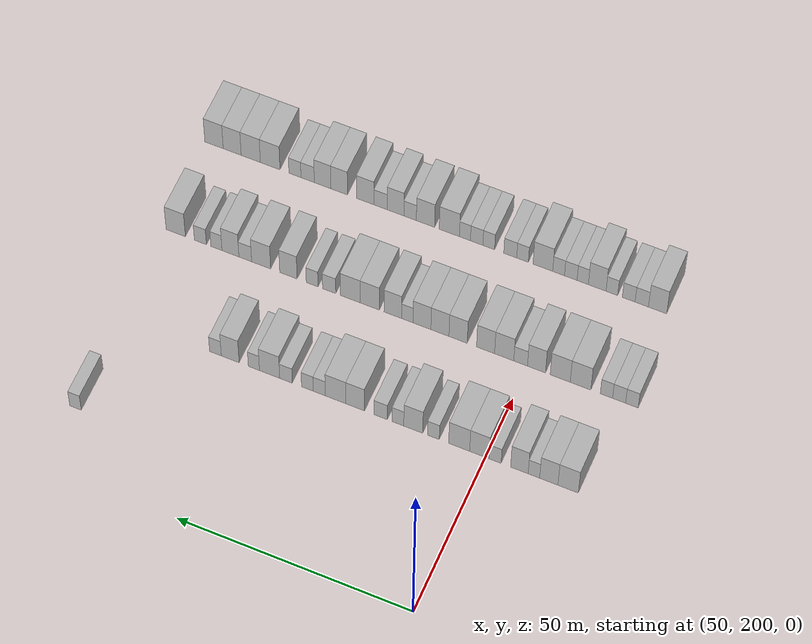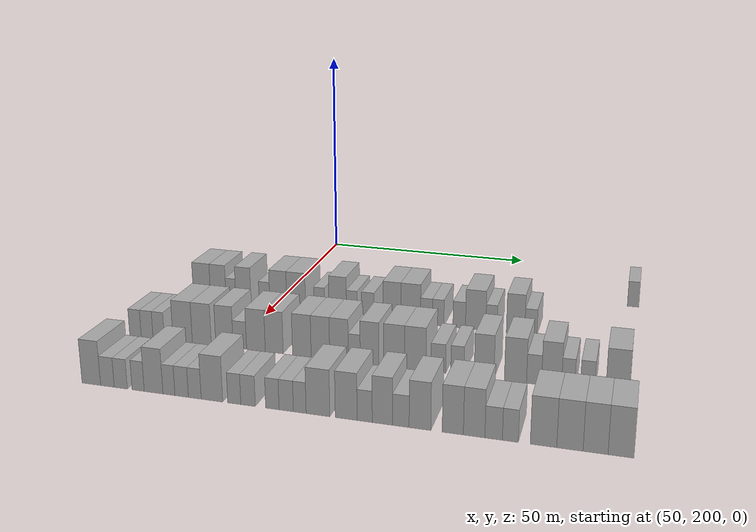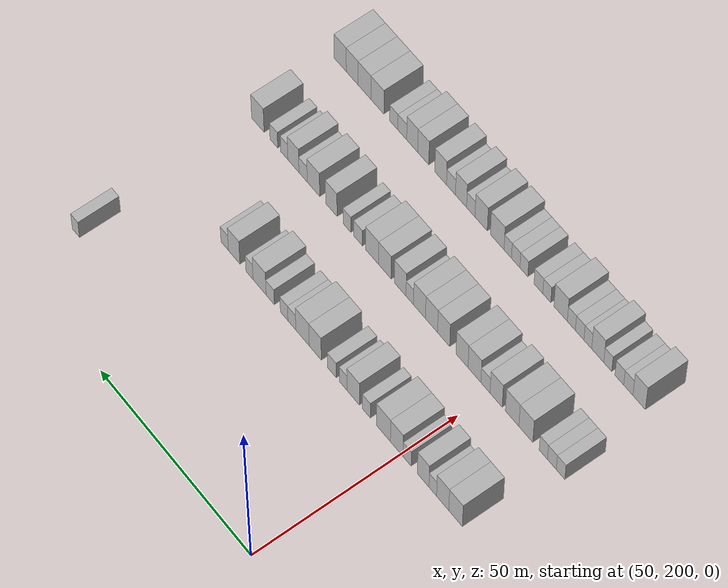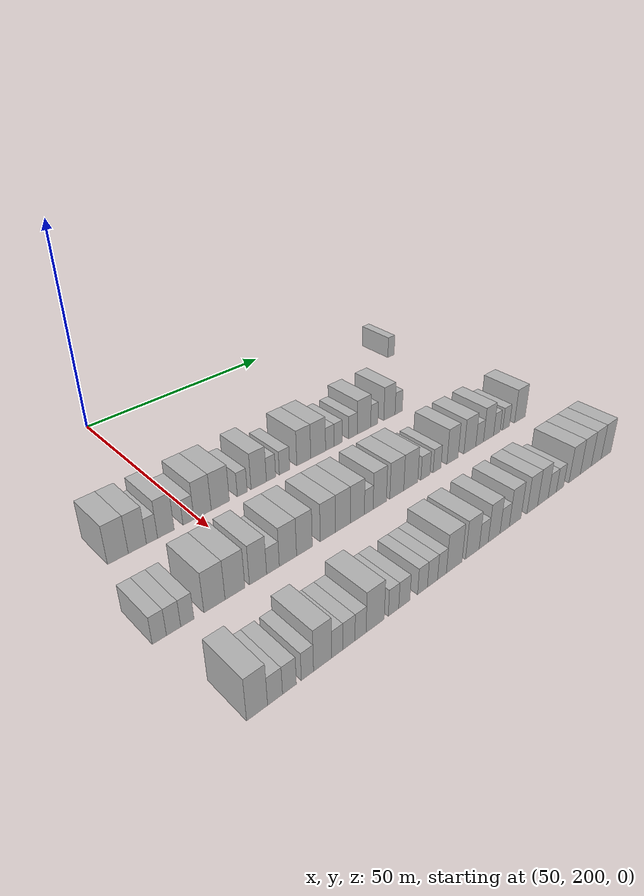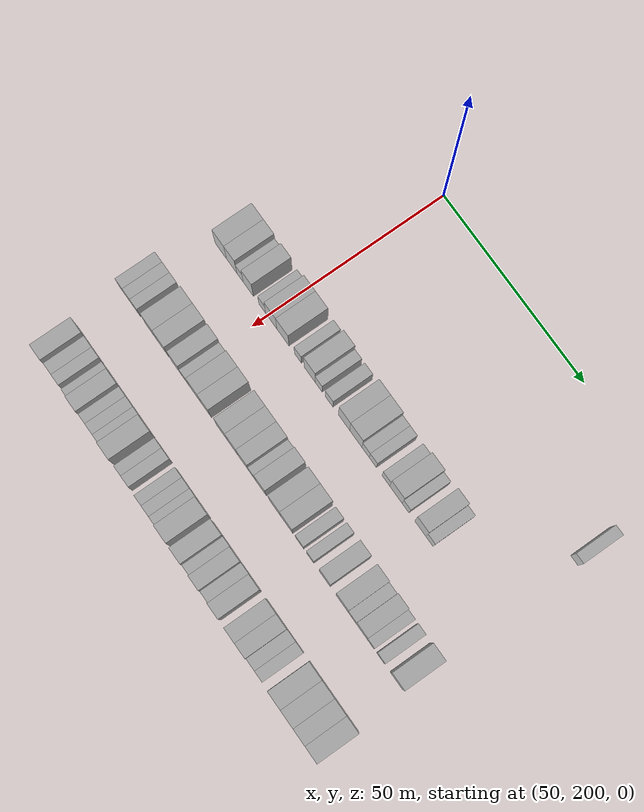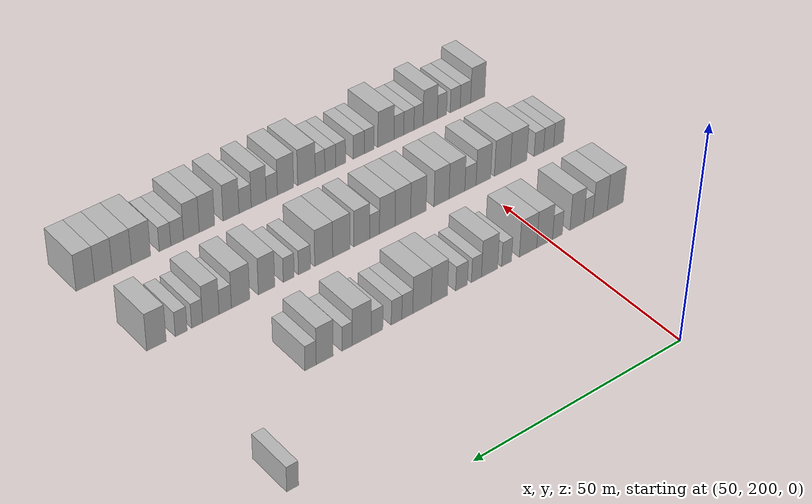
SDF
<sdf version="1.6">
 <world name="default">
  <model name="building_548">
   <static>1</static>
   <pose>69.0000 278.5231 0 0.000000 0.000000 0.000000</pose>
   <link name="link">
    <pose>0 0 3.00 0 0 0</pose>
    <collision name="collision"><geometry><box><size>10.0000 2.5204 6.0000</size></box></geometry></collision>
    <visual name="visual">
     <cast_shadows>0</cast_shadows>
     <geometry><box><size>10.0000 2.5204 6.0000</size></box></geometry>
     <material>
      <script>
       <uri>model://HANNAS_wall/materials/scripts</uri>
       <uri>model://HANNAS_wall/materials/textures</uri>
       <name>vrc/HANNAS_wall</name>
      </script>
     </material>
    </visual>
   </link>
  </model>
  <model name="building_701">
   <static>1</static>
   <pose>91.0000 182.6014 0 0.000000 0.000000 0.000000</pose>
   <link name="link">
    <pose>0 0 4.50 0 0 0</pose>
    <collision name="collision"><geometry><box><size>10.0000 4.3018 9.0000</size></box></geometry></collision>
    <visual name="visual">
     <cast_shadows>0</cast_shadows>
     <geometry><box><size>10.0000 4.3018 9.0000</size></box></geometry>
     <material>
      <script>
       <uri>model://HANNAS_wall/materials/scripts</uri>
       <uri>model://HANNAS_wall/materials/textures</uri>
       <name>vrc/HANNAS_wall</name>
      </script>
     </material>
    </visual>
   </link>
  </model>
  <model name="building_702">
   <static>1</static>
   <pose>91.0000 186.6774 0 0.000000 0.000000 0.000000</pose>
   <link name="link">
    <pose>0 0 4.50 0 0 0</pose>
    <collision name="collision"><geometry><box><size>10.0000 3.8501 9.0000</size></box></geometry></collision>
    <visual name="visual">
     <cast_shadows>0</cast_shadows>
     <geometry><box><size>10.0000 3.8501 9.0000</size></box></geometry>
     <material>
      <script>
       <uri>model://HANNAS_wall/materials/scripts</uri>
       <uri>model://HANNAS_wall/materials/textures</uri>
       <name>vrc/HANNAS_wall</name>
      </script>
     </material>
    </visual>
   </link>
  </model>
  <model name="building_703">
   <static>1</static>
   <pose>91.0000 189.8165 0 0.000000 0.000000 0.000000</pose>
   <link name="link">
    <pose>0 0 3.00 0 0 0</pose>
    <collision name="collision"><geometry><box><size>10.0000 2.4281 6.0000</size></box></geometry></collision>
    <visual name="visual">
     <cast_shadows>0</cast_shadows>
     <geometry><box><size>10.0000 2.4281 6.0000</size></box></geometry>
     <material>
      <script>
       <uri>model://HANNAS_wall/materials/scripts</uri>
       <uri>model://HANNAS_wall/materials/textures</uri>
       <name>vrc/HANNAS_wall</name>
      </script>
     </material>
    </visual>
   </link>
  </model>
  <model name="building_704">
   <static>1</static>
   <pose>91.0000 192.8850 0 0.000000 0.000000 0.000000</pose>
   <link name="link">
    <pose>0 0 4.50 0 0 0</pose>
    <collision name="collision"><geometry><box><size>10.0000 3.7090 9.0000</size></box></geometry></collision>
    <visual name="visual">
     <cast_shadows>0</cast_shadows>
     <geometry><box><size>10.0000 3.7090 9.0000</size></box></geometry>
     <material>
      <script>
       <uri>model://HANNAS_wall/materials/scripts</uri>
       <uri>model://HANNAS_wall/materials/textures</uri>
       <name>vrc/HANNAS_wall</name>
      </script>
     </material>
    </visual>
   </link>
  </model>
  <model name="building_705">
   <static>1</static>
   <pose>91.0000 198.0206 0 0.000000 0.000000 0.000000</pose>
   <link name="link">
    <pose>0 0 3.00 0 0 0</pose>
    <collision name="collision"><geometry><box><size>10.0000 2.5623 6.0000</size></box></geometry></collision>
    <visual name="visual">
     <cast_shadows>0</cast_shadows>
     <geometry><box><size>10.0000 2.5623 6.0000</size></box></geometry>
     <material>
      <script>
       <uri>model://HANNAS_wall/materials/scripts</uri>
       <uri>model://HANNAS_wall/materials/textures</uri>
       <name>vrc/HANNAS_wall</name>
      </script>
     </material>
    </visual>
   </link>
  </model>
  <model name="building_706">
   <static>1</static>
   <pose>91.0000 201.3563 0 0.000000 0.000000 0.000000</pose>
   <link name="link">
    <pose>0 0 4.50 0 0 0</pose>
    <collision name="collision"><geometry><box><size>10.0000 4.1090 9.0000</size></box></geometry></collision>
    <visual name="visual">
     <cast_shadows>0</cast_shadows>
     <geometry><box><size>10.0000 4.1090 9.0000</size></box></geometry>
     <material>
      <script>
       <uri>model://HANNAS_wall/materials/scripts</uri>
       <uri>model://HANNAS_wall/materials/textures</uri>
       <name>vrc/HANNAS_wall</name>
      </script>
     </material>
    </visual>
   </link>
  </model>
  <model name="building_707">
   <static>1</static>
   <pose>91.0000 205.6510 0 0.000000 0.000000 0.000000</pose>
   <link name="link">
    <pose>0 0 4.50 0 0 0</pose>
    <collision name="collision"><geometry><box><size>10.0000 4.4804 9.0000</size></box></geometry></collision>
    <visual name="visual">
     <cast_shadows>0</cast_shadows>
     <geometry><box><size>10.0000 4.4804 9.0000</size></box></geometry>
     <material>
      <script>
       <uri>model://HANNAS_wall/materials/scripts</uri>
       <uri>model://HANNAS_wall/materials/textures</uri>
       <name>vrc/HANNAS_wall</name>
      </script>
     </material>
    </visual>
   </link>
  </model>
  <model name="building_708">
   <static>1</static>
   <pose>91.0000 211.1552 0 0.000000 0.000000 0.000000</pose>
   <link name="link">
    <pose>0 0 3.00 0 0 0</pose>
    <collision name="collision"><geometry><box><size>10.0000 2.5281 6.0000</size></box></geometry></collision>
    <visual name="visual">
     <cast_shadows>0</cast_shadows>
     <geometry><box><size>10.0000 2.5281 6.0000</size></box></geometry>
     <material>
      <script>
       <uri>model://HANNAS_wall/materials/scripts</uri>
       <uri>model://HANNAS_wall/materials/textures</uri>
       <name>vrc/HANNAS_wall</name>
      </script>
     </material>
    </visual>
   </link>
  </model>
  <model name="building_709">
   <static>1</static>
   <pose>91.0000 215.4529 0 0.000000 0.000000 0.000000</pose>
   <link name="link">
    <pose>0 0 4.50 0 0 0</pose>
    <collision name="collision"><geometry><box><size>10.0000 4.0671 9.0000</size></box></geometry></collision>
    <visual name="visual">
     <cast_shadows>0</cast_shadows>
     <geometry><box><size>10.0000 4.0671 9.0000</size></box></geometry>
     <material>
      <script>
       <uri>model://HANNAS_wall/materials/scripts</uri>
       <uri>model://HANNAS_wall/materials/textures</uri>
       <name>vrc/HANNAS_wall</name>
      </script>
     </material>
    </visual>
   </link>
  </model>
  <model name="building_710">
   <static>1</static>
   <pose>91.0000 218.7368 0 0.000000 0.000000 0.000000</pose>
   <link name="link">
    <pose>0 0 3.00 0 0 0</pose>
    <collision name="collision"><geometry><box><size>10.0000 2.5007 6.0000</size></box></geometry></collision>
    <visual name="visual">
     <cast_shadows>0</cast_shadows>
     <geometry><box><size>10.0000 2.5007 6.0000</size></box></geometry>
     <material>
      <script>
       <uri>model://HANNAS_wall/materials/scripts</uri>
       <uri>model://HANNAS_wall/materials/textures</uri>
       <name>vrc/HANNAS_wall</name>
      </script>
     </material>
    </visual>
   </link>
  </model>
  <model name="building_711">
   <static>1</static>
   <pose>91.0000 222.4408 0 0.000000 0.000000 0.000000</pose>
   <link name="link">
    <pose>0 0 3.00 0 0 0</pose>
    <collision name="collision"><geometry><box><size>10.0000 2.9073 6.0000</size></box></geometry></collision>
    <visual name="visual">
     <cast_shadows>0</cast_shadows>
     <geometry><box><size>10.0000 2.9073 6.0000</size></box></geometry>
     <material>
      <script>
       <uri>model://HANNAS_wall/materials/scripts</uri>
       <uri>model://HANNAS_wall/materials/textures</uri>
       <name>vrc/HANNAS_wall</name>
      </script>
     </material>
    </visual>
   </link>
  </model>
  <model name="building_712">
   <static>1</static>
   <pose>91.0000 227.9040 0 0.000000 0.000000 0.000000</pose>
   <link name="link">
    <pose>0 0 4.50 0 0 0</pose>
    <collision name="collision"><geometry><box><size>10.0000 4.0192 9.0000</size></box></geometry></collision>
    <visual name="visual">
     <cast_shadows>0</cast_shadows>
     <geometry><box><size>10.0000 4.0192 9.0000</size></box></geometry>
     <material>
      <script>
       <uri>model://HANNAS_wall/materials/scripts</uri>
       <uri>model://HANNAS_wall/materials/textures</uri>
       <name>vrc/HANNAS_wall</name>
      </script>
     </material>
    </visual>
   </link>
  </model>
  <model name="building_713">
   <static>1</static>
   <pose>91.0000 232.1258 0 0.000000 0.000000 0.000000</pose>
   <link name="link">
    <pose>0 0 4.50 0 0 0</pose>
    <collision name="collision"><geometry><box><size>10.0000 4.4245 9.0000</size></box></geometry></collision>
    <visual name="visual">
     <cast_shadows>0</cast_shadows>
     <geometry><box><size>10.0000 4.4245 9.0000</size></box></geometry>
     <material>
      <script>
       <uri>model://HANNAS_wall/materials/scripts</uri>
       <uri>model://HANNAS_wall/materials/textures</uri>
       <name>vrc/HANNAS_wall</name>
      </script>
     </material>
    </visual>
   </link>
  </model>
  <model name="building_714">
   <static>1</static>
   <pose>91.0000 235.6514 0 0.000000 0.000000 0.000000</pose>
   <link name="link">
    <pose>0 0 3.00 0 0 0</pose>
    <collision name="collision"><geometry><box><size>10.0000 2.6267 6.0000</size></box></geometry></collision>
    <visual name="visual">
     <cast_shadows>0</cast_shadows>
     <geometry><box><size>10.0000 2.6267 6.0000</size></box></geometry>
     <material>
      <script>
       <uri>model://HANNAS_wall/materials/scripts</uri>
       <uri>model://HANNAS_wall/materials/textures</uri>
       <name>vrc/HANNAS_wall</name>
      </script>
     </material>
    </visual>
   </link>
  </model>
  <model name="building_715">
   <static>1</static>
   <pose>91.0000 238.2298 0 0.000000 0.000000 0.000000</pose>
   <link name="link">
    <pose>0 0 3.00 0 0 0</pose>
    <collision name="collision"><geometry><box><size>10.0000 2.5301 6.0000</size></box></geometry></collision>
    <visual name="visual">
     <cast_shadows>0</cast_shadows>
     <geometry><box><size>10.0000 2.5301 6.0000</size></box></geometry>
     <material>
      <script>
       <uri>model://HANNAS_wall/materials/scripts</uri>
       <uri>model://HANNAS_wall/materials/textures</uri>
       <name>vrc/HANNAS_wall</name>
      </script>
     </material>
    </visual>
   </link>
  </model>
  <model name="building_716">
   <static>1</static>
   <pose>91.0000 242.8654 0 0.000000 0.000000 0.000000</pose>
   <link name="link">
    <pose>0 0 3.00 0 0 0</pose>
    <collision name="collision"><geometry><box><size>10.0000 2.7411 6.0000</size></box></geometry></collision>
    <visual name="visual">
     <cast_shadows>0</cast_shadows>
     <geometry><box><size>10.0000 2.7411 6.0000</size></box></geometry>
     <material>
      <script>
       <uri>model://HANNAS_wall/materials/scripts</uri>
       <uri>model://HANNAS_wall/materials/textures</uri>
       <name>vrc/HANNAS_wall</name>
      </script>
     </material>
    </visual>
   </link>
  </model>
  <model name="building_717">
   <static>1</static>
   <pose>91.0000 246.4365 0 0.000000 0.000000 0.000000</pose>
   <link name="link">
    <pose>0 0 4.50 0 0 0</pose>
    <collision name="collision"><geometry><box><size>10.0000 4.4010 9.0000</size></box></geometry></collision>
    <visual name="visual">
     <cast_shadows>0</cast_shadows>
     <geometry><box><size>10.0000 4.4010 9.0000</size></box></geometry>
     <material>
      <script>
       <uri>model://HANNAS_wall/materials/scripts</uri>
       <uri>model://HANNAS_wall/materials/textures</uri>
       <name>vrc/HANNAS_wall</name>
      </script>
     </material>
    </visual>
   </link>
  </model>
  <model name="building_718">
   <static>1</static>
   <pose>91.0000 249.8440 0 0.000000 0.000000 0.000000</pose>
   <link name="link">
    <pose>0 0 3.00 0 0 0</pose>
    <collision name="collision"><geometry><box><size>10.0000 2.4140 6.0000</size></box></geometry></collision>
    <visual name="visual">
     <cast_shadows>0</cast_shadows>
     <geometry><box><size>10.0000 2.4140 6.0000</size></box></geometry>
     <material>
      <script>
       <uri>model://HANNAS_wall/materials/scripts</uri>
       <uri>model://HANNAS_wall/materials/textures</uri>
       <name>vrc/HANNAS_wall</name>
      </script>
     </material>
    </visual>
   </link>
  </model>
  <model name="building_719">
   <static>1</static>
   <pose>91.0000 254.9987 0 0.000000 0.000000 0.000000</pose>
   <link name="link">
    <pose>0 0 4.50 0 0 0</pose>
    <collision name="collision"><geometry><box><size>10.0000 3.8954 9.0000</size></box></geometry></collision>
    <visual name="visual">
     <cast_shadows>0</cast_shadows>
     <geometry><box><size>10.0000 3.8954 9.0000</size></box></geometry>
     <material>
      <script>
       <uri>model://HANNAS_wall/materials/scripts</uri>
       <uri>model://HANNAS_wall/materials/textures</uri>
       <name>vrc/HANNAS_wall</name>
      </script>
     </material>
    </visual>
   </link>
  </model>
  <model name="building_720">
   <static>1</static>
   <pose>91.0000 258.2241 0 0.000000 0.000000 0.000000</pose>
   <link name="link">
    <pose>0 0 3.00 0 0 0</pose>
    <collision name="collision"><geometry><box><size>10.0000 2.5553 6.0000</size></box></geometry></collision>
    <visual name="visual">
     <cast_shadows>0</cast_shadows>
     <geometry><box><size>10.0000 2.5553 6.0000</size></box></geometry>
     <material>
      <script>
       <uri>model://HANNAS_wall/materials/scripts</uri>
       <uri>model://HANNAS_wall/materials/textures</uri>
       <name>vrc/HANNAS_wall</name>
      </script>
     </material>
    </visual>
   </link>
  </model>
  <model name="building_881">
   <static>1</static>
   <pose>113.0000 177.9006 0 0.000000 0.000000 0.000000</pose>
   <link name="link">
    <pose>0 0 3.00 0 0 0</pose>
    <collision name="collision"><geometry><box><size>10.0000 2.6804 6.0000</size></box></geometry></collision>
    <visual name="visual">
     <cast_shadows>0</cast_shadows>
     <geometry><box><size>10.0000 2.6804 6.0000</size></box></geometry>
     <material>
      <script>
       <uri>model://HANNAS_wall/materials/scripts</uri>
       <uri>model://HANNAS_wall/materials/textures</uri>
       <name>vrc/HANNAS_wall</name>
      </script>
     </material>
    </visual>
   </link>
  </model>
  <model name="building_882">
   <static>1</static>
   <pose>113.0000 180.6223 0 0.000000 0.000000 0.000000</pose>
   <link name="link">
    <pose>0 0 3.00 0 0 0</pose>
    <collision name="collision"><geometry><box><size>10.0000 2.7631 6.0000</size></box></geometry></collision>
    <visual name="visual">
     <cast_shadows>0</cast_shadows>
     <geometry><box><size>10.0000 2.7631 6.0000</size></box></geometry>
     <material>
      <script>
       <uri>model://HANNAS_wall/materials/scripts</uri>
       <uri>model://HANNAS_wall/materials/textures</uri>
       <name>vrc/HANNAS_wall</name>
      </script>
     </material>
    </visual>
   </link>
  </model>
  <model name="building_883">
   <static>1</static>
   <pose>113.0000 183.3119 0 0.000000 0.000000 0.000000</pose>
   <link name="link">
    <pose>0 0 3.00 0 0 0</pose>
    <collision name="collision"><geometry><box><size>10.0000 2.6160 6.0000</size></box></geometry></collision>
    <visual name="visual">
     <cast_shadows>0</cast_shadows>
     <geometry><box><size>10.0000 2.6160 6.0000</size></box></geometry>
     <material>
      <script>
       <uri>model://HANNAS_wall/materials/scripts</uri>
       <uri>model://HANNAS_wall/materials/textures</uri>
       <name>vrc/HANNAS_wall</name>
      </script>
     </material>
    </visual>
   </link>
  </model>
  <model name="building_884">
   <static>1</static>
   <pose>113.0000 188.8213 0 0.000000 0.000000 0.000000</pose>
   <link name="link">
    <pose>0 0 4.50 0 0 0</pose>
    <collision name="collision"><geometry><box><size>10.0000 4.4028 9.0000</size></box></geometry></collision>
    <visual name="visual">
     <cast_shadows>0</cast_shadows>
     <geometry><box><size>10.0000 4.4028 9.0000</size></box></geometry>
     <material>
      <script>
       <uri>model://HANNAS_wall/materials/scripts</uri>
       <uri>model://HANNAS_wall/materials/textures</uri>
       <name>vrc/HANNAS_wall</name>
      </script>
     </material>
    </visual>
   </link>
  </model>
  <model name="building_885">
   <static>1</static>
   <pose>113.0000 193.1659 0 0.000000 0.000000 0.000000</pose>
   <link name="link">
    <pose>0 0 4.50 0 0 0</pose>
    <collision name="collision"><geometry><box><size>10.0000 4.2864 9.0000</size></box></geometry></collision>
    <visual name="visual">
     <cast_shadows>0</cast_shadows>
     <geometry><box><size>10.0000 4.2864 9.0000</size></box></geometry>
     <material>
      <script>
       <uri>model://HANNAS_wall/materials/scripts</uri>
       <uri>model://HANNAS_wall/materials/textures</uri>
       <name>vrc/HANNAS_wall</name>
      </script>
     </material>
    </visual>
   </link>
  </model>
  <model name="building_886">
   <static>1</static>
   <pose>113.0000 198.2454 0 0.000000 0.000000 0.000000</pose>
   <link name="link">
    <pose>0 0 4.50 0 0 0</pose>
    <collision name="collision"><geometry><box><size>10.0000 3.8727 9.0000</size></box></geometry></collision>
    <visual name="visual">
     <cast_shadows>0</cast_shadows>
     <geometry><box><size>10.0000 3.8727 9.0000</size></box></geometry>
     <material>
      <script>
       <uri>model://HANNAS_wall/materials/scripts</uri>
       <uri>model://HANNAS_wall/materials/textures</uri>
       <name>vrc/HANNAS_wall</name>
      </script>
     </material>
    </visual>
   </link>
  </model>
  <model name="building_887">
   <static>1</static>
   <pose>113.0000 201.6525 0 0.000000 0.000000 0.000000</pose>
   <link name="link">
    <pose>0 0 3.00 0 0 0</pose>
    <collision name="collision"><geometry><box><size>10.0000 2.9414 6.0000</size></box></geometry></collision>
    <visual name="visual">
     <cast_shadows>0</cast_shadows>
     <geometry><box><size>10.0000 2.9414 6.0000</size></box></geometry>
     <material>
      <script>
       <uri>model://HANNAS_wall/materials/scripts</uri>
       <uri>model://HANNAS_wall/materials/textures</uri>
       <name>vrc/HANNAS_wall</name>
      </script>
     </material>
    </visual>
   </link>
  </model>
  <model name="building_888">
   <static>1</static>
   <pose>113.0000 205.1812 0 0.000000 0.000000 0.000000</pose>
   <link name="link">
    <pose>0 0 4.50 0 0 0</pose>
    <collision name="collision"><geometry><box><size>10.0000 4.1160 9.0000</size></box></geometry></collision>
    <visual name="visual">
     <cast_shadows>0</cast_shadows>
     <geometry><box><size>10.0000 4.1160 9.0000</size></box></geometry>
     <material>
      <script>
       <uri>model://HANNAS_wall/materials/scripts</uri>
       <uri>model://HANNAS_wall/materials/textures</uri>
       <name>vrc/HANNAS_wall</name>
      </script>
     </material>
    </visual>
   </link>
  </model>
  <model name="building_889">
   <static>1</static>
   <pose>113.0000 209.1878 0 0.000000 0.000000 0.000000</pose>
   <link name="link">
    <pose>0 0 4.50 0 0 0</pose>
    <collision name="collision"><geometry><box><size>10.0000 3.8972 9.0000</size></box></geometry></collision>
    <visual name="visual">
     <cast_shadows>0</cast_shadows>
     <geometry><box><size>10.0000 3.8972 9.0000</size></box></geometry>
     <material>
      <script>
       <uri>model://HANNAS_wall/materials/scripts</uri>
       <uri>model://HANNAS_wall/materials/textures</uri>
       <name>vrc/HANNAS_wall</name>
      </script>
     </material>
    </visual>
   </link>
  </model>
  <model name="building_890">
   <static>1</static>
   <pose>113.0000 215.1152 0 0.000000 0.000000 0.000000</pose>
   <link name="link">
    <pose>0 0 4.50 0 0 0</pose>
    <collision name="collision"><geometry><box><size>10.0000 3.9574 9.0000</size></box></geometry></collision>
    <visual name="visual">
     <cast_shadows>0</cast_shadows>
     <geometry><box><size>10.0000 3.9574 9.0000</size></box></geometry>
     <material>
      <script>
       <uri>model://HANNAS_wall/materials/scripts</uri>
       <uri>model://HANNAS_wall/materials/textures</uri>
       <name>vrc/HANNAS_wall</name>
      </script>
     </material>
    </visual>
   </link>
  </model>
  <model name="building_891">
   <static>1</static>
   <pose>113.0000 219.0532 0 0.000000 0.000000 0.000000</pose>
   <link name="link">
    <pose>0 0 4.50 0 0 0</pose>
    <collision name="collision"><geometry><box><size>10.0000 3.9187 9.0000</size></box></geometry></collision>
    <visual name="visual">
     <cast_shadows>0</cast_shadows>
     <geometry><box><size>10.0000 3.9187 9.0000</size></box></geometry>
     <material>
      <script>
       <uri>model://HANNAS_wall/materials/scripts</uri>
       <uri>model://HANNAS_wall/materials/textures</uri>
       <name>vrc/HANNAS_wall</name>
      </script>
     </material>
    </visual>
   </link>
  </model>
  <model name="building_892">
   <static>1</static>
   <pose>113.0000 222.9624 0 0.000000 0.000000 0.000000</pose>
   <link name="link">
    <pose>0 0 4.50 0 0 0</pose>
    <collision name="collision"><geometry><box><size>10.0000 3.8996 9.0000</size></box></geometry></collision>
    <visual name="visual">
     <cast_shadows>0</cast_shadows>
     <geometry><box><size>10.0000 3.8996 9.0000</size></box></geometry>
     <material>
      <script>
       <uri>model://HANNAS_wall/materials/scripts</uri>
       <uri>model://HANNAS_wall/materials/textures</uri>
       <name>vrc/HANNAS_wall</name>
      </script>
     </material>
    </visual>
   </link>
  </model>
  <model name="building_893">
   <static>1</static>
   <pose>113.0000 226.1427 0 0.000000 0.000000 0.000000</pose>
   <link name="link">
    <pose>0 0 3.00 0 0 0</pose>
    <collision name="collision"><geometry><box><size>10.0000 2.4612 6.0000</size></box></geometry></collision>
    <visual name="visual">
     <cast_shadows>0</cast_shadows>
     <geometry><box><size>10.0000 2.4612 6.0000</size></box></geometry>
     <material>
      <script>
       <uri>model://HANNAS_wall/materials/scripts</uri>
       <uri>model://HANNAS_wall/materials/textures</uri>
       <name>vrc/HANNAS_wall</name>
      </script>
     </material>
    </visual>
   </link>
  </model>
  <model name="building_894">
   <static>1</static>
   <pose>113.0000 229.2935 0 0.000000 0.000000 0.000000</pose>
   <link name="link">
    <pose>0 0 4.50 0 0 0</pose>
    <collision name="collision"><geometry><box><size>10.0000 3.8404 9.0000</size></box></geometry></collision>
    <visual name="visual">
     <cast_shadows>0</cast_shadows>
     <geometry><box><size>10.0000 3.8404 9.0000</size></box></geometry>
     <material>
      <script>
       <uri>model://HANNAS_wall/materials/scripts</uri>
       <uri>model://HANNAS_wall/materials/textures</uri>
       <name>vrc/HANNAS_wall</name>
      </script>
     </material>
    </visual>
   </link>
  </model>
  <model name="building_895">
   <static>1</static>
   <pose>113.0000 234.3044 0 0.000000 0.000000 0.000000</pose>
   <link name="link">
    <pose>0 0 4.50 0 0 0</pose>
    <collision name="collision"><geometry><box><size>10.0000 4.1813 9.0000</size></box></geometry></collision>
    <visual name="visual">
     <cast_shadows>0</cast_shadows>
     <geometry><box><size>10.0000 4.1813 9.0000</size></box></geometry>
     <material>
      <script>
       <uri>model://HANNAS_wall/materials/scripts</uri>
       <uri>model://HANNAS_wall/materials/textures</uri>
       <name>vrc/HANNAS_wall</name>
      </script>
     </material>
    </visual>
   </link>
  </model>
  <model name="building_896">
   <static>1</static>
   <pose>113.0000 238.5669 0 0.000000 0.000000 0.000000</pose>
   <link name="link">
    <pose>0 0 4.50 0 0 0</pose>
    <collision name="collision"><geometry><box><size>10.0000 4.3438 9.0000</size></box></geometry></collision>
    <visual name="visual">
     <cast_shadows>0</cast_shadows>
     <geometry><box><size>10.0000 4.3438 9.0000</size></box></geometry>
     <material>
      <script>
       <uri>model://HANNAS_wall/materials/scripts</uri>
       <uri>model://HANNAS_wall/materials/textures</uri>
       <name>vrc/HANNAS_wall</name>
      </script>
     </material>
    </visual>
   </link>
  </model>
  <model name="building_897">
   <static>1</static>
   <pose>113.0000 243.1892 0 0.000000 0.000000 0.000000</pose>
   <link name="link">
    <pose>0 0 3.00 0 0 0</pose>
    <collision name="collision"><geometry><box><size>10.0000 2.9008 6.0000</size></box></geometry></collision>
    <visual name="visual">
     <cast_shadows>0</cast_shadows>
     <geometry><box><size>10.0000 2.9008 6.0000</size></box></geometry>
     <material>
      <script>
       <uri>model://HANNAS_wall/materials/scripts</uri>
       <uri>model://HANNAS_wall/materials/textures</uri>
       <name>vrc/HANNAS_wall</name>
      </script>
     </material>
    </visual>
   </link>
  </model>
  <model name="building_898">
   <static>1</static>
   <pose>113.0000 246.9305 0 0.000000 0.000000 0.000000</pose>
   <link name="link">
    <pose>0 0 3.00 0 0 0</pose>
    <collision name="collision"><geometry><box><size>10.0000 2.5819 6.0000</size></box></geometry></collision>
    <visual name="visual">
     <cast_shadows>0</cast_shadows>
     <geometry><box><size>10.0000 2.5819 6.0000</size></box></geometry>
     <material>
      <script>
       <uri>model://HANNAS_wall/materials/scripts</uri>
       <uri>model://HANNAS_wall/materials/textures</uri>
       <name>vrc/HANNAS_wall</name>
      </script>
     </material>
    </visual>
   </link>
  </model>
  <model name="building_899">
   <static>1</static>
   <pose>113.0000 252.1386 0 0.000000 0.000000 0.000000</pose>
   <link name="link">
    <pose>0 0 4.50 0 0 0</pose>
    <collision name="collision"><geometry><box><size>10.0000 3.8342 9.0000</size></box></geometry></collision>
    <visual name="visual">
     <cast_shadows>0</cast_shadows>
     <geometry><box><size>10.0000 3.8342 9.0000</size></box></geometry>
     <material>
      <script>
       <uri>model://HANNAS_wall/materials/scripts</uri>
       <uri>model://HANNAS_wall/materials/textures</uri>
       <name>vrc/HANNAS_wall</name>
      </script>
     </material>
    </visual>
   </link>
  </model>
  <model name="building_900">
   <static>1</static>
   <pose>113.0000 258.1624 0 0.000000 0.000000 0.000000</pose>
   <link name="link">
    <pose>0 0 4.50 0 0 0</pose>
    <collision name="collision"><geometry><box><size>10.0000 4.2135 9.0000</size></box></geometry></collision>
    <visual name="visual">
     <cast_shadows>0</cast_shadows>
     <geometry><box><size>10.0000 4.2135 9.0000</size></box></geometry>
     <material>
      <script>
       <uri>model://HANNAS_wall/materials/scripts</uri>
       <uri>model://HANNAS_wall/materials/textures</uri>
       <name>vrc/HANNAS_wall</name>
      </script>
     </material>
    </visual>
   </link>
  </model>
  <model name="building_901">
   <static>1</static>
   <pose>113.0000 261.6789 0 0.000000 0.000000 0.000000</pose>
   <link name="link">
    <pose>0 0 3.00 0 0 0</pose>
    <collision name="collision"><geometry><box><size>10.0000 2.8195 6.0000</size></box></geometry></collision>
    <visual name="visual">
     <cast_shadows>0</cast_shadows>
     <geometry><box><size>10.0000 2.8195 6.0000</size></box></geometry>
     <material>
      <script>
       <uri>model://HANNAS_wall/materials/scripts</uri>
       <uri>model://HANNAS_wall/materials/textures</uri>
       <name>vrc/HANNAS_wall</name>
      </script>
     </material>
    </visual>
   </link>
  </model>
  <model name="building_902">
   <static>1</static>
   <pose>113.0000 264.9665 0 0.000000 0.000000 0.000000</pose>
   <link name="link">
    <pose>0 0 4.50 0 0 0</pose>
    <collision name="collision"><geometry><box><size>10.0000 3.7557 9.0000</size></box></geometry></collision>
    <visual name="visual">
     <cast_shadows>0</cast_shadows>
     <geometry><box><size>10.0000 3.7557 9.0000</size></box></geometry>
     <material>
      <script>
       <uri>model://HANNAS_wall/materials/scripts</uri>
       <uri>model://HANNAS_wall/materials/textures</uri>
       <name>vrc/HANNAS_wall</name>
      </script>
     </material>
    </visual>
   </link>
  </model>
  <model name="building_903">
   <static>1</static>
   <pose>113.0000 268.0720 0 0.000000 0.000000 0.000000</pose>
   <link name="link">
    <pose>0 0 3.00 0 0 0</pose>
    <collision name="collision"><geometry><box><size>10.0000 2.4552 6.0000</size></box></geometry></collision>
    <visual name="visual">
     <cast_shadows>0</cast_shadows>
     <geometry><box><size>10.0000 2.4552 6.0000</size></box></geometry>
     <material>
      <script>
       <uri>model://HANNAS_wall/materials/scripts</uri>
       <uri>model://HANNAS_wall/materials/textures</uri>
       <name>vrc/HANNAS_wall</name>
      </script>
     </material>
    </visual>
   </link>
  </model>
  <model name="building_904">
   <static>1</static>
   <pose>113.0000 271.6313 0 0.000000 0.000000 0.000000</pose>
   <link name="link">
    <pose>0 0 3.00 0 0 0</pose>
    <collision name="collision"><geometry><box><size>10.0000 2.6634 6.0000</size></box></geometry></collision>
    <visual name="visual">
     <cast_shadows>0</cast_shadows>
     <geometry><box><size>10.0000 2.6634 6.0000</size></box></geometry>
     <material>
      <script>
       <uri>model://HANNAS_wall/materials/scripts</uri>
       <uri>model://HANNAS_wall/materials/textures</uri>
       <name>vrc/HANNAS_wall</name>
      </script>
     </material>
    </visual>
   </link>
  </model>
  <model name="building_905">
   <static>1</static>
   <pose>113.0000 277.1120 0 0.000000 0.000000 0.000000</pose>
   <link name="link">
    <pose>0 0 4.50 0 0 0</pose>
    <collision name="collision"><geometry><box><size>10.0000 4.2980 9.0000</size></box></geometry></collision>
    <visual name="visual">
     <cast_shadows>0</cast_shadows>
     <geometry><box><size>10.0000 4.2980 9.0000</size></box></geometry>
     <material>
      <script>
       <uri>model://HANNAS_wall/materials/scripts</uri>
       <uri>model://HANNAS_wall/materials/textures</uri>
       <name>vrc/HANNAS_wall</name>
      </script>
     </material>
    </visual>
   </link>
  </model>
  <model name="building_1064">
   <static>1</static>
   <pose>135.0000 181.0384 0 0.000000 0.000000 0.000000</pose>
   <link name="link">
    <pose>0 0 4.50 0 0 0</pose>
    <collision name="collision"><geometry><box><size>10.0000 3.9240 9.0000</size></box></geometry></collision>
    <visual name="visual">
     <cast_shadows>0</cast_shadows>
     <geometry><box><size>10.0000 3.9240 9.0000</size></box></geometry>
     <material>
      <script>
       <uri>model://HANNAS_wall/materials/scripts</uri>
       <uri>model://HANNAS_wall/materials/textures</uri>
       <name>vrc/HANNAS_wall</name>
      </script>
     </material>
    </visual>
   </link>
  </model>
  <model name="building_1065">
   <static>1</static>
   <pose>135.0000 184.4392 0 0.000000 0.000000 0.000000</pose>
   <link name="link">
    <pose>0 0 3.00 0 0 0</pose>
    <collision name="collision"><geometry><box><size>10.0000 2.8777 6.0000</size></box></geometry></collision>
    <visual name="visual">
     <cast_shadows>0</cast_shadows>
     <geometry><box><size>10.0000 2.8777 6.0000</size></box></geometry>
     <material>
      <script>
       <uri>model://HANNAS_wall/materials/scripts</uri>
       <uri>model://HANNAS_wall/materials/textures</uri>
       <name>vrc/HANNAS_wall</name>
      </script>
     </material>
    </visual>
   </link>
  </model>
  <model name="building_1066">
   <static>1</static>
   <pose>135.0000 187.2486 0 0.000000 0.000000 0.000000</pose>
   <link name="link">
    <pose>0 0 3.00 0 0 0</pose>
    <collision name="collision"><geometry><box><size>10.0000 2.7411 6.0000</size></box></geometry></collision>
    <visual name="visual">
     <cast_shadows>0</cast_shadows>
     <geometry><box><size>10.0000 2.7411 6.0000</size></box></geometry>
     <material>
      <script>
       <uri>model://HANNAS_wall/materials/scripts</uri>
       <uri>model://HANNAS_wall/materials/textures</uri>
       <name>vrc/HANNAS_wall</name>
      </script>
     </material>
    </visual>
   </link>
  </model>
  <model name="building_1067">
   <static>1</static>
   <pose>135.0000 190.8734 0 0.000000 0.000000 0.000000</pose>
   <link name="link">
    <pose>0 0 3.00 0 0 0</pose>
    <collision name="collision"><geometry><box><size>10.0000 2.5083 6.0000</size></box></geometry></collision>
    <visual name="visual">
     <cast_shadows>0</cast_shadows>
     <geometry><box><size>10.0000 2.5083 6.0000</size></box></geometry>
     <material>
      <script>
       <uri>model://HANNAS_wall/materials/scripts</uri>
       <uri>model://HANNAS_wall/materials/textures</uri>
       <name>vrc/HANNAS_wall</name>
      </script>
     </material>
    </visual>
   </link>
  </model>
  <model name="building_1068">
   <static>1</static>
   <pose>135.0000 194.0460 0 0.000000 0.000000 0.000000</pose>
   <link name="link">
    <pose>0 0 4.50 0 0 0</pose>
    <collision name="collision"><geometry><box><size>10.0000 3.8369 9.0000</size></box></geometry></collision>
    <visual name="visual">
     <cast_shadows>0</cast_shadows>
     <geometry><box><size>10.0000 3.8369 9.0000</size></box></geometry>
     <material>
      <script>
       <uri>model://HANNAS_wall/materials/scripts</uri>
       <uri>model://HANNAS_wall/materials/textures</uri>
       <name>vrc/HANNAS_wall</name>
      </script>
     </material>
    </visual>
   </link>
  </model>
  <model name="building_1069">
   <static>1</static>
   <pose>135.0000 197.1858 0 0.000000 0.000000 0.000000</pose>
   <link name="link">
    <pose>0 0 3.00 0 0 0</pose>
    <collision name="collision"><geometry><box><size>10.0000 2.4427 6.0000</size></box></geometry></collision>
    <visual name="visual">
     <cast_shadows>0</cast_shadows>
     <geometry><box><size>10.0000 2.4427 6.0000</size></box></geometry>
     <material>
      <script>
       <uri>model://HANNAS_wall/materials/scripts</uri>
       <uri>model://HANNAS_wall/materials/textures</uri>
       <name>vrc/HANNAS_wall</name>
      </script>
     </material>
    </visual>
   </link>
  </model>
  <model name="building_1070">
   <static>1</static>
   <pose>135.0000 199.7687 0 0.000000 0.000000 0.000000</pose>
   <link name="link">
    <pose>0 0 3.00 0 0 0</pose>
    <collision name="collision"><geometry><box><size>10.0000 2.7229 6.0000</size></box></geometry></collision>
    <visual name="visual">
     <cast_shadows>0</cast_shadows>
     <geometry><box><size>10.0000 2.7229 6.0000</size></box></geometry>
     <material>
      <script>
       <uri>model://HANNAS_wall/materials/scripts</uri>
       <uri>model://HANNAS_wall/materials/textures</uri>
       <name>vrc/HANNAS_wall</name>
      </script>
     </material>
    </visual>
   </link>
  </model>
  <model name="building_1071">
   <static>1</static>
   <pose>135.0000 202.4104 0 0.000000 0.000000 0.000000</pose>
   <link name="link">
    <pose>0 0 3.00 0 0 0</pose>
    <collision name="collision"><geometry><box><size>10.0000 2.5606 6.0000</size></box></geometry></collision>
    <visual name="visual">
     <cast_shadows>0</cast_shadows>
     <geometry><box><size>10.0000 2.5606 6.0000</size></box></geometry>
     <material>
      <script>
       <uri>model://HANNAS_wall/materials/scripts</uri>
       <uri>model://HANNAS_wall/materials/textures</uri>
       <name>vrc/HANNAS_wall</name>
      </script>
     </material>
    </visual>
   </link>
  </model>
  <model name="building_1072">
   <static>1</static>
   <pose>135.0000 205.8315 0 0.000000 0.000000 0.000000</pose>
   <link name="link">
    <pose>0 0 4.50 0 0 0</pose>
    <collision name="collision"><geometry><box><size>10.0000 4.2815 9.0000</size></box></geometry></collision>
    <visual name="visual">
     <cast_shadows>0</cast_shadows>
     <geometry><box><size>10.0000 4.2815 9.0000</size></box></geometry>
     <material>
      <script>
       <uri>model://HANNAS_wall/materials/scripts</uri>
       <uri>model://HANNAS_wall/materials/textures</uri>
       <name>vrc/HANNAS_wall</name>
      </script>
     </material>
    </visual>
   </link>
  </model>
  <model name="building_1073">
   <static>1</static>
   <pose>135.0000 210.2494 0 0.000000 0.000000 0.000000</pose>
   <link name="link">
    <pose>0 0 3.00 0 0 0</pose>
    <collision name="collision"><geometry><box><size>10.0000 2.5543 6.0000</size></box></geometry></collision>
    <visual name="visual">
     <cast_shadows>0</cast_shadows>
     <geometry><box><size>10.0000 2.5543 6.0000</size></box></geometry>
     <material>
      <script>
       <uri>model://HANNAS_wall/materials/scripts</uri>
       <uri>model://HANNAS_wall/materials/textures</uri>
       <name>vrc/HANNAS_wall</name>
      </script>
     </material>
    </visual>
   </link>
  </model>
  <model name="building_1074">
   <static>1</static>
   <pose>135.0000 212.9371 0 0.000000 0.000000 0.000000</pose>
   <link name="link">
    <pose>0 0 3.00 0 0 0</pose>
    <collision name="collision"><geometry><box><size>10.0000 2.8211 6.0000</size></box></geometry></collision>
    <visual name="visual">
     <cast_shadows>0</cast_shadows>
     <geometry><box><size>10.0000 2.8211 6.0000</size></box></geometry>
     <material>
      <script>
       <uri>model://HANNAS_wall/materials/scripts</uri>
       <uri>model://HANNAS_wall/materials/textures</uri>
       <name>vrc/HANNAS_wall</name>
      </script>
     </material>
    </visual>
   </link>
  </model>
  <model name="building_1075">
   <static>1</static>
   <pose>135.0000 217.6313 0 0.000000 0.000000 0.000000</pose>
   <link name="link">
    <pose>0 0 3.00 0 0 0</pose>
    <collision name="collision"><geometry><box><size>10.0000 2.5674 6.0000</size></box></geometry></collision>
    <visual name="visual">
     <cast_shadows>0</cast_shadows>
     <geometry><box><size>10.0000 2.5674 6.0000</size></box></geometry>
     <material>
      <script>
       <uri>model://HANNAS_wall/materials/scripts</uri>
       <uri>model://HANNAS_wall/materials/textures</uri>
       <name>vrc/HANNAS_wall</name>
      </script>
     </material>
    </visual>
   </link>
  </model>
  <model name="building_1076">
   <static>1</static>
   <pose>135.0000 220.2772 0 0.000000 0.000000 0.000000</pose>
   <link name="link">
    <pose>0 0 3.00 0 0 0</pose>
    <collision name="collision"><geometry><box><size>10.0000 2.7243 6.0000</size></box></geometry></collision>
    <visual name="visual">
     <cast_shadows>0</cast_shadows>
     <geometry><box><size>10.0000 2.7243 6.0000</size></box></geometry>
     <material>
      <script>
       <uri>model://HANNAS_wall/materials/scripts</uri>
       <uri>model://HANNAS_wall/materials/textures</uri>
       <name>vrc/HANNAS_wall</name>
      </script>
     </material>
    </visual>
   </link>
  </model>
  <model name="building_1077">
   <static>1</static>
   <pose>135.0000 222.8490 0 0.000000 0.000000 0.000000</pose>
   <link name="link">
    <pose>0 0 3.00 0 0 0</pose>
    <collision name="collision"><geometry><box><size>10.0000 2.4194 6.0000</size></box></geometry></collision>
    <visual name="visual">
     <cast_shadows>0</cast_shadows>
     <geometry><box><size>10.0000 2.4194 6.0000</size></box></geometry>
     <material>
      <script>
       <uri>model://HANNAS_wall/materials/scripts</uri>
       <uri>model://HANNAS_wall/materials/textures</uri>
       <name>vrc/HANNAS_wall</name>
      </script>
     </material>
    </visual>
   </link>
  </model>
  <model name="building_1078">
   <static>1</static>
   <pose>135.0000 226.2807 0 0.000000 0.000000 0.000000</pose>
   <link name="link">
    <pose>0 0 4.50 0 0 0</pose>
    <collision name="collision"><geometry><box><size>10.0000 4.4440 9.0000</size></box></geometry></collision>
    <visual name="visual">
     <cast_shadows>0</cast_shadows>
     <geometry><box><size>10.0000 4.4440 9.0000</size></box></geometry>
     <material>
      <script>
       <uri>model://HANNAS_wall/materials/scripts</uri>
       <uri>model://HANNAS_wall/materials/textures</uri>
       <name>vrc/HANNAS_wall</name>
      </script>
     </material>
    </visual>
   </link>
  </model>
  <model name="building_1079">
   <static>1</static>
   <pose>135.0000 231.5190 0 0.000000 0.000000 0.000000</pose>
   <link name="link">
    <pose>0 0 4.50 0 0 0</pose>
    <collision name="collision"><geometry><box><size>10.0000 4.0326 9.0000</size></box></geometry></collision>
    <visual name="visual">
     <cast_shadows>0</cast_shadows>
     <geometry><box><size>10.0000 4.0326 9.0000</size></box></geometry>
     <material>
      <script>
       <uri>model://HANNAS_wall/materials/scripts</uri>
       <uri>model://HANNAS_wall/materials/textures</uri>
       <name>vrc/HANNAS_wall</name>
      </script>
     </material>
    </visual>
   </link>
  </model>
  <model name="building_1080">
   <static>1</static>
   <pose>135.0000 234.9138 0 0.000000 0.000000 0.000000</pose>
   <link name="link">
    <pose>0 0 3.00 0 0 0</pose>
    <collision name="collision"><geometry><box><size>10.0000 2.7569 6.0000</size></box></geometry></collision>
    <visual name="visual">
     <cast_shadows>0</cast_shadows>
     <geometry><box><size>10.0000 2.7569 6.0000</size></box></geometry>
     <material>
      <script>
       <uri>model://HANNAS_wall/materials/scripts</uri>
       <uri>model://HANNAS_wall/materials/textures</uri>
       <name>vrc/HANNAS_wall</name>
      </script>
     </material>
    </visual>
   </link>
  </model>
  <model name="building_1081">
   <static>1</static>
   <pose>135.0000 238.1231 0 0.000000 0.000000 0.000000</pose>
   <link name="link">
    <pose>0 0 4.50 0 0 0</pose>
    <collision name="collision"><geometry><box><size>10.0000 3.6618 9.0000</size></box></geometry></collision>
    <visual name="visual">
     <cast_shadows>0</cast_shadows>
     <geometry><box><size>10.0000 3.6618 9.0000</size></box></geometry>
     <material>
      <script>
       <uri>model://HANNAS_wall/materials/scripts</uri>
       <uri>model://HANNAS_wall/materials/textures</uri>
       <name>vrc/HANNAS_wall</name>
      </script>
     </material>
    </visual>
   </link>
  </model>
  <model name="building_1082">
   <static>1</static>
   <pose>135.0000 241.4424 0 0.000000 0.000000 0.000000</pose>
   <link name="link">
    <pose>0 0 3.00 0 0 0</pose>
    <collision name="collision"><geometry><box><size>10.0000 2.9767 6.0000</size></box></geometry></collision>
    <visual name="visual">
     <cast_shadows>0</cast_shadows>
     <geometry><box><size>10.0000 2.9767 6.0000</size></box></geometry>
     <material>
      <script>
       <uri>model://HANNAS_wall/materials/scripts</uri>
       <uri>model://HANNAS_wall/materials/textures</uri>
       <name>vrc/HANNAS_wall</name>
      </script>
     </material>
    </visual>
   </link>
  </model>
  <model name="building_1083">
   <static>1</static>
   <pose>135.0000 244.8570 0 0.000000 0.000000 0.000000</pose>
   <link name="link">
    <pose>0 0 4.50 0 0 0</pose>
    <collision name="collision"><geometry><box><size>10.0000 3.8526 9.0000</size></box></geometry></collision>
    <visual name="visual">
     <cast_shadows>0</cast_shadows>
     <geometry><box><size>10.0000 3.8526 9.0000</size></box></geometry>
     <material>
      <script>
       <uri>model://HANNAS_wall/materials/scripts</uri>
       <uri>model://HANNAS_wall/materials/textures</uri>
       <name>vrc/HANNAS_wall</name>
      </script>
     </material>
    </visual>
   </link>
  </model>
  <model name="building_1084">
   <static>1</static>
   <pose>135.0000 250.6269 0 0.000000 0.000000 0.000000</pose>
   <link name="link">
    <pose>0 0 4.50 0 0 0</pose>
    <collision name="collision"><geometry><box><size>10.0000 3.6872 9.0000</size></box></geometry></collision>
    <visual name="visual">
     <cast_shadows>0</cast_shadows>
     <geometry><box><size>10.0000 3.6872 9.0000</size></box></geometry>
     <material>
      <script>
       <uri>model://HANNAS_wall/materials/scripts</uri>
       <uri>model://HANNAS_wall/materials/textures</uri>
       <name>vrc/HANNAS_wall</name>
      </script>
     </material>
    </visual>
   </link>
  </model>
  <model name="building_1085">
   <static>1</static>
   <pose>135.0000 254.3196 0 0.000000 0.000000 0.000000</pose>
   <link name="link">
    <pose>0 0 4.50 0 0 0</pose>
    <collision name="collision"><geometry><box><size>10.0000 3.6981 9.0000</size></box></geometry></collision>
    <visual name="visual">
     <cast_shadows>0</cast_shadows>
     <geometry><box><size>10.0000 3.6981 9.0000</size></box></geometry>
     <material>
      <script>
       <uri>model://HANNAS_wall/materials/scripts</uri>
       <uri>model://HANNAS_wall/materials/textures</uri>
       <name>vrc/HANNAS_wall</name>
      </script>
     </material>
    </visual>
   </link>
  </model>
  <model name="building_1086">
   <static>1</static>
   <pose>135.0000 257.6541 0 0.000000 0.000000 0.000000</pose>
   <link name="link">
    <pose>0 0 3.00 0 0 0</pose>
    <collision name="collision"><geometry><box><size>10.0000 2.9709 6.0000</size></box></geometry></collision>
    <visual name="visual">
     <cast_shadows>0</cast_shadows>
     <geometry><box><size>10.0000 2.9709 6.0000</size></box></geometry>
     <material>
      <script>
       <uri>model://HANNAS_wall/materials/scripts</uri>
       <uri>model://HANNAS_wall/materials/textures</uri>
       <name>vrc/HANNAS_wall</name>
      </script>
     </material>
    </visual>
   </link>
  </model>
  <model name="building_1087">
   <static>1</static>
   <pose>135.0000 260.4909 0 0.000000 0.000000 0.000000</pose>
   <link name="link">
    <pose>0 0 3.00 0 0 0</pose>
    <collision name="collision"><geometry><box><size>10.0000 2.7026 6.0000</size></box></geometry></collision>
    <visual name="visual">
     <cast_shadows>0</cast_shadows>
     <geometry><box><size>10.0000 2.7026 6.0000</size></box></geometry>
     <material>
      <script>
       <uri>model://HANNAS_wall/materials/scripts</uri>
       <uri>model://HANNAS_wall/materials/textures</uri>
       <name>vrc/HANNAS_wall</name>
      </script>
     </material>
    </visual>
   </link>
  </model>
  <model name="building_1088">
   <static>1</static>
   <pose>135.0000 266.0417 0 0.000000 0.000000 0.000000</pose>
   <link name="link">
    <pose>0 0 4.50 0 0 0</pose>
    <collision name="collision"><geometry><box><size>10.0000 4.3990 9.0000</size></box></geometry></collision>
    <visual name="visual">
     <cast_shadows>0</cast_shadows>
     <geometry><box><size>10.0000 4.3990 9.0000</size></box></geometry>
     <material>
      <script>
       <uri>model://HANNAS_wall/materials/scripts</uri>
       <uri>model://HANNAS_wall/materials/textures</uri>
       <name>vrc/HANNAS_wall</name>
      </script>
     </material>
    </visual>
   </link>
  </model>
  <model name="building_1089">
   <static>1</static>
   <pose>135.0000 270.3993 0 0.000000 0.000000 0.000000</pose>
   <link name="link">
    <pose>0 0 4.50 0 0 0</pose>
    <collision name="collision"><geometry><box><size>10.0000 4.3160 9.0000</size></box></geometry></collision>
    <visual name="visual">
     <cast_shadows>0</cast_shadows>
     <geometry><box><size>10.0000 4.3160 9.0000</size></box></geometry>
     <material>
      <script>
       <uri>model://HANNAS_wall/materials/scripts</uri>
       <uri>model://HANNAS_wall/materials/textures</uri>
       <name>vrc/HANNAS_wall</name>
      </script>
     </material>
    </visual>
   </link>
  </model>
  <model name="building_1090">
   <static>1</static>
   <pose>135.0000 274.5761 0 0.000000 0.000000 0.000000</pose>
   <link name="link">
    <pose>0 0 4.50 0 0 0</pose>
    <collision name="collision"><geometry><box><size>10.0000 4.0377 9.0000</size></box></geometry></collision>
    <visual name="visual">
     <cast_shadows>0</cast_shadows>
     <geometry><box><size>10.0000 4.0377 9.0000</size></box></geometry>
     <material>
      <script>
       <uri>model://HANNAS_wall/materials/scripts</uri>
       <uri>model://HANNAS_wall/materials/textures</uri>
       <name>vrc/HANNAS_wall</name>
      </script>
     </material>
    </visual>
   </link>
  </model>
  <model name="building_1091">
   <static>1</static>
   <pose>135.0000 278.6666 0 0.000000 0.000000 0.000000</pose>
   <link name="link">
    <pose>0 0 4.50 0 0 0</pose>
    <collision name="collision"><geometry><box><size>10.0000 4.1433 9.0000</size></box></geometry></collision>
    <visual name="visual">
     <cast_shadows>0</cast_shadows>
     <geometry><box><size>10.0000 4.1433 9.0000</size></box></geometry>
     <material>
      <script>
       <uri>model://HANNAS_wall/materials/scripts</uri>
       <uri>model://HANNAS_wall/materials/textures</uri>
       <name>vrc/HANNAS_wall</name>
      </script>
     </material>
    </visual>
   </link>
  </model>
 </world>
</sdf>
